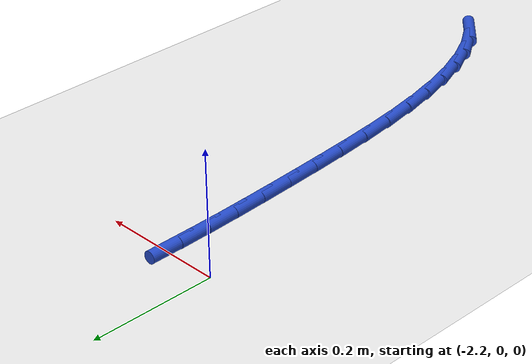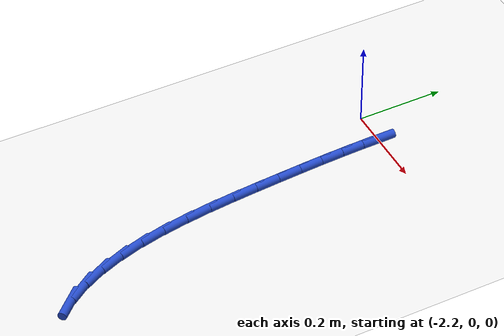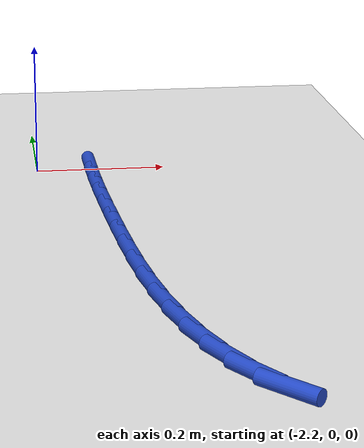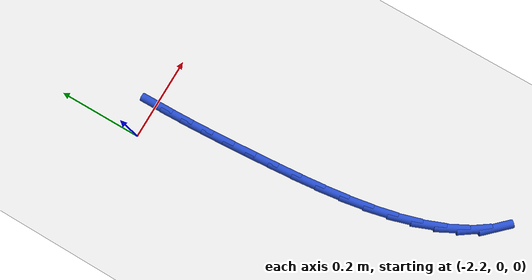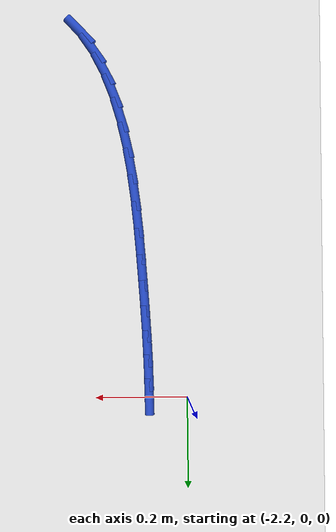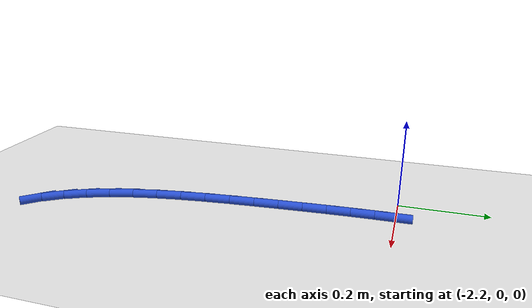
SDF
<sdf version="1.6">
 <world name="default">
  <model name="ground_plane">
   <static>1</static>
   <link name="link">
    <collision name="collision">
     <geometry><plane><normal>0 0 1</normal><size>100 100</size></plane></geometry>
     <surface><friction><ode><mu>100</mu><mu2>50</mu2></ode></friction></surface>
    </collision>
    <visual name="visual">
     <cast_shadows>0</cast_shadows>
     <geometry><plane><normal>0 0 1</normal><size>100 100</size></plane></geometry>
     <material>
      <script><uri>file://media/materials/scripts/gazebo.material</uri><name>Gazebo/WhiteGlow</name></script>
     </material>
    </visual>
   </link>
  </model>
  <model name="line">
   <link name="link_64">
    <pose>-2.1164566358058154 -0.004113269625073173 0.01 0 1.57 -1.5536796277074962</pose>
    <collision name="collision">
     <geometry><cylinder><radius>0.01</radius><length>0.08</length></cylinder></geometry>
    </collision>
    <visual name="visual">
     <material>
      <script><name>Gazebo/Blue</name><uri>file://media/materials/scripts/gazebo.material</uri></script>
     </material>
     <geometry><cylinder><radius>0.01</radius><length>0.08</length></cylinder></geometry>
    </visual>
   </link>
   <link name="link_65">
    <pose>-2.1155652290029554 -0.056186379131043275 0.01 0 1.57 -1.5362477215427754</pose>
    <collision name="collision">
     <geometry><cylinder><radius>0.01</radius><length>0.08</length></cylinder></geometry>
    </collision>
    <visual name="visual">
     <material>
      <script><name>Gazebo/Blue</name><uri>file://media/materials/scripts/gazebo.material</uri></script>
     </material>
     <geometry><cylinder><radius>0.01</radius><length>0.08</length></cylinder></geometry>
    </visual>
   </link>
   <link name="link_66">
    <pose>-2.1137413827462446 -0.10895610845304737 0.01 0 1.57 -1.522115062630855</pose>
    <collision name="collision">
     <geometry><cylinder><radius>0.01</radius><length>0.08</length></cylinder></geometry>
    </collision>
    <visual name="visual">
     <material>
      <script><name>Gazebo/Blue</name><uri>file://media/materials/scripts/gazebo.material</uri></script>
     </material>
     <geometry><cylinder><radius>0.01</radius><length>0.08</length></cylinder></geometry>
    </visual>
   </link>
   <link name="link_67">
    <pose>-2.111127235916863 -0.16261292055775495 0.01 0 1.57 -1.5112641831623501</pose>
    <collision name="collision">
     <geometry><cylinder><radius>0.01</radius><length>0.08</length></cylinder></geometry>
    </collision>
    <visual name="visual">
     <material>
      <script><name>Gazebo/Blue</name><uri>file://media/materials/scripts/gazebo.material</uri></script>
     </material>
     <geometry><cylinder><radius>0.01</radius><length>0.08</length></cylinder></geometry>
    </visual>
   </link>
   <link name="link_68">
    <pose>-2.1078649273959895 -0.21734727841183332 0.01 0 1.57 -1.5036088208066654</pose>
    <collision name="collision">
     <geometry><cylinder><radius>0.01</radius><length>0.08</length></cylinder></geometry>
    </collision>
    <visual name="visual">
     <material>
      <script><name>Gazebo/Blue</name><uri>file://media/materials/scripts/gazebo.material</uri></script>
     </material>
     <geometry><cylinder><radius>0.01</radius><length>0.08</length></cylinder></geometry>
    </visual>
   </link>
   <link name="link_69">
    <pose>-2.1040965960648044 -0.27334964498195197 0.01 0 1.57 -1.4978403866974415</pose>
    <collision name="collision">
     <geometry><cylinder><radius>0.01</radius><length>0.08</length></cylinder></geometry>
    </collision>
    <visual name="visual">
     <material>
      <script><name>Gazebo/Blue</name><uri>file://media/materials/scripts/gazebo.material</uri></script>
     </material>
     <geometry><cylinder><radius>0.01</radius><length>0.08</length></cylinder></geometry>
    </visual>
   </link>
   <link name="link_70">
    <pose>-2.099903657480397 -0.33071984498528245 0.01 0 1.57 -1.4864207423548819</pose>
    <collision name="collision">
     <geometry><cylinder><radius>0.01</radius><length>0.08</length></cylinder></geometry>
    </collision>
    <visual name="visual">
     <material>
      <script><name>Gazebo/Blue</name><uri>file://media/materials/scripts/gazebo.material</uri></script>
     </material>
     <geometry><cylinder><radius>0.01</radius><length>0.08</length></cylinder></geometry>
    </visual>
   </link>
   <link name="link_71">
    <pose>-2.09497670267162 -0.3889743416114311 0.01 0 1.57 -1.4663379668429786</pose>
    <collision name="collision">
     <geometry><cylinder><radius>0.01</radius><length>0.08</length></cylinder></geometry>
    </collision>
    <visual name="visual">
     <material>
      <script><name>Gazebo/Blue</name><uri>file://media/materials/scripts/gazebo.material</uri></script>
     </material>
     <geometry><cylinder><radius>0.01</radius><length>0.08</length></cylinder></geometry>
    </visual>
   </link>
   <link name="link_72">
    <pose>-2.0888515137799994 -0.44739852363561705 0.01 0 1.57 -1.4370419180516547</pose>
    <collision name="collision">
     <geometry><cylinder><radius>0.01</radius><length>0.08</length></cylinder></geometry>
    </collision>
    <visual name="visual">
     <material>
      <script><name>Gazebo/Blue</name><uri>file://media/materials/scripts/gazebo.material</uri></script>
     </material>
     <geometry><cylinder><radius>0.01</radius><length>0.08</length></cylinder></geometry>
    </visual>
   </link>
   <link name="link_73">
    <pose>-2.0810634865208613 -0.5052772030366668 0.01 0 1.57 -1.3974251851438626</pose>
    <collision name="collision">
     <geometry><cylinder><radius>0.01</radius><length>0.08</length></cylinder></geometry>
    </collision>
    <visual name="visual">
     <material>
      <script><name>Gazebo/Blue</name><uri>file://media/materials/scripts/gazebo.material</uri></script>
     </material>
     <geometry><cylinder><radius>0.01</radius><length>0.08</length></cylinder></geometry>
    </visual>
   </link>
   <link name="link_74">
    <pose>-2.0711480166095333 -0.5618951917934072 0.01 0 1.57 -1.3457740039152328</pose>
    <collision name="collision">
     <geometry><cylinder><radius>0.01</radius><length>0.08</length></cylinder></geometry>
    </collision>
    <visual name="visual">
     <material>
      <script><name>Gazebo/Blue</name><uri>file://media/materials/scripts/gazebo.material</uri></script>
     </material>
     <geometry><cylinder><radius>0.01</radius><length>0.08</length></cylinder></geometry>
    </visual>
   </link>
   <link name="link_75">
    <pose>-2.0586404997613434 -0.6165373018846658 0.01 0 1.57 -1.2797129841174781</pose>
    <collision name="collision">
     <geometry><cylinder><radius>0.01</radius><length>0.08</length></cylinder></geometry>
    </collision>
    <visual name="visual">
     <material>
      <script><name>Gazebo/Blue</name><uri>file://media/materials/scripts/gazebo.material</uri></script>
     </material>
     <geometry><cylinder><radius>0.01</radius><length>0.08</length></cylinder></geometry>
    </visual>
   </link>
   <link name="link_76">
    <pose>-2.043076331691617 -0.6684883452892677 0.01 0 1.57 -1.196208322535458</pose>
    <collision name="collision">
     <geometry><cylinder><radius>0.01</radius><length>0.08</length></cylinder></geometry>
    </collision>
    <visual name="visual">
     <material>
      <script><name>Gazebo/Blue</name><uri>file://media/materials/scripts/gazebo.material</uri></script>
     </material>
     <geometry><cylinder><radius>0.01</radius><length>0.08</length></cylinder></geometry>
    </visual>
   </link>
   <link name="link_77">
    <pose>-2.023990908115682 -0.7170331339860404 0.01 0 1.57 -1.0917884903590909</pose>
    <collision name="collision">
     <geometry><cylinder><radius>0.01</radius><length>0.08</length></cylinder></geometry>
    </collision>
    <visual name="visual">
     <material>
      <script><name>Gazebo/Blue</name><uri>file://media/materials/scripts/gazebo.material</uri></script>
     </material>
     <geometry><cylinder><radius>0.01</radius><length>0.08</length></cylinder></geometry>
    </visual>
   </link>
   <link name="link_78">
    <pose>-2.0009196247488656 -0.7614564799538113 0.01 0 1.57 -0.9632810053468827</pose>
    <collision name="collision">
     <geometry><cylinder><radius>0.01</radius><length>0.08</length></cylinder></geometry>
    </collision>
    <visual name="visual">
     <material>
      <script><name>Gazebo/Blue</name><uri>file://media/materials/scripts/gazebo.material</uri></script>
     </material>
     <geometry><cylinder><radius>0.01</radius><length>0.08</length></cylinder></geometry>
    </visual>
   </link>
   <link name="link_79">
    <pose>-1.9733978773064946 -0.8010431951714058 0.01 0 1.57 -0.8094350476963762</pose>
    <collision name="collision">
     <geometry><cylinder><radius>0.01</radius><length>0.08</length></cylinder></geometry>
    </collision>
    <visual name="visual">
     <material>
      <script><name>Gazebo/Blue</name><uri>file://media/materials/scripts/gazebo.material</uri></script>
     </material>
     <geometry><cylinder><radius>0.01</radius><length>0.08</length></cylinder></geometry>
    </visual>
   </link>
  </model>
 </world>
</sdf>
